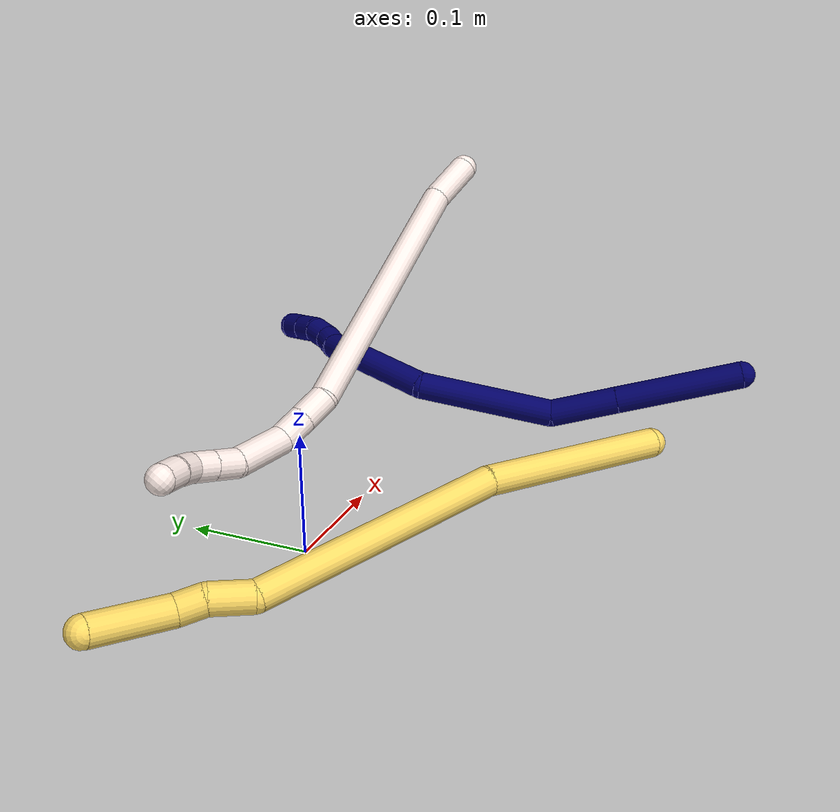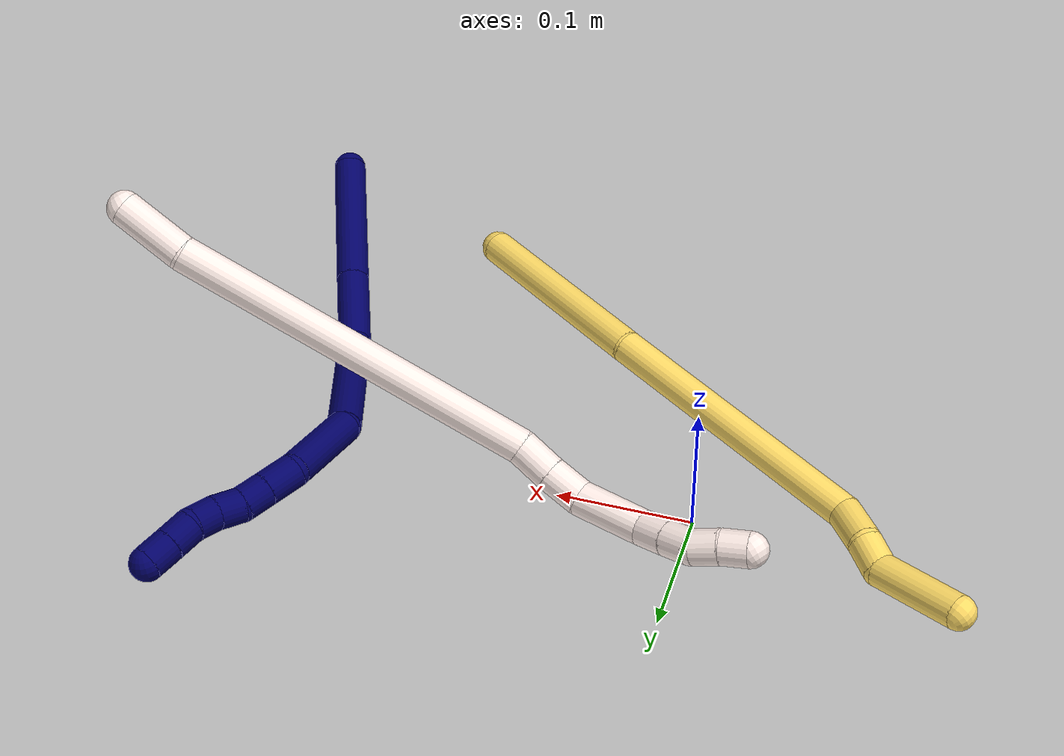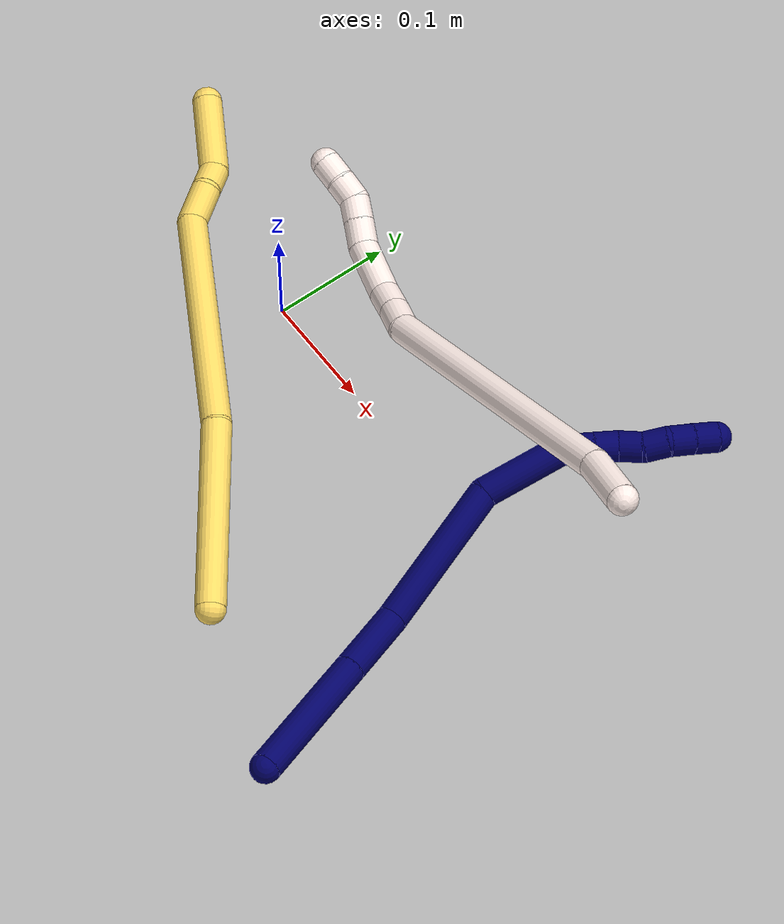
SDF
<sdf version="1.7">
 <world name="default">
  <model name="photoneo_s_sensor">
   <static>1</static>
   <pose>0 0 2 1.57079 1.57079 3.14159</pose>
   <link name="link">
    <inertial><mass>0.1</mass></inertial>
    <sensor name="sensor" type="depth">
     <update_rate>30</update_rate>
     <camera>
      <horizontal_fov>1.22</horizontal_fov>
      <image><width>1920</width><height>1200</height><format>B8G8R8</format></image>
      <clip><near>0.1</near><far>4</far></clip>
      <depth_camera><output>points</output></depth_camera>
     </camera>
     <plugin name="camera_plugin" filename="libgazebo_ros_depth_camera.so">
      <baseline>0.2</baseline>
      <alwaysOn>1</alwaysOn>
      <updateRate>0.0</updateRate>
      <cameraName>camera_ir</cameraName>
      <imageTopicName>/camera/color/image_raw</imageTopicName>
      <cameraInfoTopicName>/camera/color/camera_info</cameraInfoTopicName>
      <depthImageTopicName>/camera/depth/image_raw</depthImageTopicName>
      <depthImageCameraInfoTopicName>/camera/depth/camera_info</depthImageCameraInfoTopicName>
      <pointCloudTopicName>/camera/depth/points</pointCloudTopicName>
      <frameName>fr_optical</frameName>
      <pointCloudCutoff>0.1</pointCloudCutoff>
      <pointCloudCutoffMax>2.0</pointCloudCutoffMax>
      <distortionK1>0</distortionK1>
      <distortionK2>0</distortionK2>
      <distortionK3>0</distortionK3>
      <distortionT1>0</distortionT1>
      <distortionT2>0</distortionT2>
      <CxPrime>0</CxPrime>
      <Cx>0</Cx>
      <Cy>0</Cy>
      <focalLength>0</focalLength>
      <hackBaseline>0</hackBaseline>
     </plugin>
    </sensor>
   </link>
  </model>
  <model name="bin">
   <static>1</static>
   <link name="bottom">
    <collision name="collision-bottom">
     <pose>0 0 -0.01 0 -0 0</pose>
     <geometry><box><size>0.8 0.6 0.02</size></box></geometry>
     <surface>
      <friction><ode><mu>100</mu><mu2>100</mu2></ode></friction>
      <contact><collide_bitmask>65535</collide_bitmask></contact>
     </surface>
    </collision>
   </link>
   <link name="west_wall">
    <collision name="collision-west_wall">
     <pose>-0.41 0 0.1 0 -0 0</pose>
     <geometry><box><size>0.02 0.6 0.2</size></box></geometry>
     <surface>
      <friction><ode><mu>100</mu><mu2>100</mu2></ode></friction>
      <contact><collide_bitmask>65535</collide_bitmask></contact>
     </surface>
    </collision>
   </link>
   <link name="east_wall">
    <collision name="collision-east_wall">
     <pose>0.41 0 0.1 0 -0 0</pose>
     <geometry><box><size>0.02 0.6 0.2</size></box></geometry>
     <surface>
      <friction><ode><mu>100</mu><mu2>100</mu2></ode></friction>
      <contact><collide_bitmask>65535</collide_bitmask></contact>
     </surface>
    </collision>
   </link>
   <link name="south_wall">
    <collision name="collision-south_wall">
     <pose>0 -0.31 0.1 0 -0 0</pose>
     <geometry><box><size>0.8 0.02 0.2</size></box></geometry>
     <surface>
      <friction><ode><mu>100</mu><mu2>100</mu2></ode></friction>
      <contact><collide_bitmask>65535</collide_bitmask></contact>
     </surface>
    </collision>
   </link>
   <link name="north_wall">
    <collision name="collision-north_wall">
     <pose>0 0.31 0.1 0 -0 0</pose>
     <geometry><box><size>0.8 0.02 0.2</size></box></geometry>
     <surface>
      <friction><ode><mu>100</mu><mu2>100</mu2></ode></friction>
      <contact><collide_bitmask>65535</collide_bitmask></contact>
     </surface>
    </collision>
   </link>
  </model>
  <model name="5">
   <static>0</static>
   <link name="5">
    <collision name="collision-cylinder-e_1_1_4">
     <pose>-0.081043 0.003778 0.006917 -0.499925 -1.47384 0.45532</pose>
     <geometry><cylinder><radius>0.0125</radius><length>0.162852</length></cylinder></geometry>
     <surface>
      <friction><ode><mu>1.16</mu><mu2>1.16</mu2><slip1>0</slip1><slip2>0</slip2></ode></friction>
      <contact><ode><kp>1e+06</kp><kd>1</kd><max_vel>0</max_vel><min_depth>0.001</min_depth></ode></contact>
     </surface>
    </collision>
    <visual name="visual-cylinder-e_1_1_4">
     <pose>-0.081043 0.003778 0.006917 -0.499925 -1.47384 0.45532</pose>
     <geometry><cylinder><radius>0.0125</radius><length>0.162852</length></cylinder></geometry>
     <material><ambient>1 0.858824 0.4 1</ambient></material>
    </visual>
    <collision name="collision-cylinder-e_2_4_5">
     <pose>-0.265751 0.032181 0.015292 -1.51171 -1.33718 1.28009</pose>
     <geometry><cylinder><radius>0.0125</radius><length>0.213118</length></cylinder></geometry>
     <surface>
      <friction><ode><mu>1.16</mu><mu2>1.16</mu2><slip1>0</slip1><slip2>0</slip2></ode></friction>
      <contact><ode><kp>1e+06</kp><kd>1</kd><max_vel>0</max_vel><min_depth>0.001</min_depth></ode></contact>
     </surface>
    </collision>
    <visual name="visual-cylinder-e_2_4_5">
     <pose>-0.265751 0.032181 0.015292 -1.51171 -1.33718 1.28009</pose>
     <geometry><cylinder><radius>0.0125</radius><length>0.213118</length></cylinder></geometry>
     <material><ambient>1 0.858824 0.4 1</ambient></material>
    </visual>
    <collision name="collision-cylinder-e_3_5_6">
     <pose>-0.385034 0.055061 0.022964 0.273718 -1.17885 -0.183675</pose>
     <geometry><cylinder><radius>0.0125</radius><length>0.033801</length></cylinder></geometry>
     <surface>
      <friction><ode><mu>1.16</mu><mu2>1.16</mu2><slip1>0</slip1><slip2>0</slip2></ode></friction>
      <contact><ode><kp>1e+06</kp><kd>1</kd><max_vel>0</max_vel><min_depth>0.001</min_depth></ode></contact>
     </surface>
    </collision>
    <visual name="visual-cylinder-e_3_5_6">
     <pose>-0.385034 0.055061 0.022964 0.273718 -1.17885 -0.183675</pose>
     <geometry><cylinder><radius>0.0125</radius><length>0.033801</length></cylinder></geometry>
     <material><ambient>1 0.858824 0.4 1</ambient></material>
    </visual>
    <collision name="collision-cylinder-e_4_6_7">
     <pose>-0.411067 0.055682 0.033813 -0.471995 -1.10751 0.295205</pose>
     <geometry><cylinder><radius>0.0125</radius><length>0.023283</length></cylinder></geometry>
     <surface>
      <friction><ode><mu>1.16</mu><mu2>1.16</mu2><slip1>0</slip1><slip2>0</slip2></ode></friction>
      <contact><ode><kp>1e+06</kp><kd>1</kd><max_vel>0</max_vel><min_depth>0.001</min_depth></ode></contact>
     </surface>
    </collision>
    <visual name="visual-cylinder-e_4_6_7">
     <pose>-0.411067 0.055682 0.033813 -0.471995 -1.10751 0.295205</pose>
     <geometry><cylinder><radius>0.0125</radius><length>0.023283</length></cylinder></geometry>
     <material><ambient>1 0.858824 0.4 1</ambient></material>
    </visual>
    <collision name="collision-cylinder-e_5_7_2">
     <pose>-0.454909 0.05784 0.036712 3.02279 -1.51858 -3.01644</pose>
     <geometry><cylinder><radius>0.0125</radius><length>0.066947</length></cylinder></geometry>
     <surface>
      <friction><ode><mu>1.16</mu><mu2>1.16</mu2><slip1>0</slip1><slip2>0</slip2></ode></friction>
      <contact><ode><kp>1e+06</kp><kd>1</kd><max_vel>0</max_vel><min_depth>0.001</min_depth></ode></contact>
     </surface>
    </collision>
    <visual name="visual-cylinder-e_5_7_2">
     <pose>-0.454909 0.05784 0.036712 3.02279 -1.51858 -3.01644</pose>
     <geometry><cylinder><radius>0.0125</radius><length>0.066947</length></cylinder></geometry>
     <material><ambient>1 0.858824 0.4 1</ambient></material>
    </visual>
    <collision name="collision-sphere-2">
     <pose>-0.488337 0.057633 0.034977 0 -0 0</pose>
     <geometry><sphere><radius>0.0125</radius></sphere></geometry>
     <surface>
      <friction><ode><mu>1.16</mu><mu2>1.16</mu2><slip1>0</slip1><slip2>0</slip2></ode></friction>
      <contact><ode><kp>1e+06</kp><kd>1</kd><max_vel>0</max_vel><min_depth>0.001</min_depth></ode></contact>
     </surface>
    </collision>
    <visual name="visual-sphere-2">
     <pose>-0.488337 0.057633 0.034977 0 -0 0</pose>
     <geometry><sphere><radius>0.0125</radius></sphere></geometry>
     <material><ambient>1 0.858824 0.4 1</ambient></material>
    </visual>
    <collision name="collision-sphere-7">
     <pose>-0.421481 0.058047 0.038446 0 -0 0</pose>
     <geometry><sphere><radius>0.0125</radius></sphere></geometry>
     <surface>
      <friction><ode><mu>1.16</mu><mu2>1.16</mu2><slip1>0</slip1><slip2>0</slip2></ode></friction>
      <contact><ode><kp>1e+06</kp><kd>1</kd><max_vel>0</max_vel><min_depth>0.001</min_depth></ode></contact>
     </surface>
    </collision>
    <visual name="visual-sphere-7">
     <pose>-0.421481 0.058047 0.038446 0 -0 0</pose>
     <geometry><sphere><radius>0.0125</radius></sphere></geometry>
     <material><ambient>1 0.858824 0.4 1</ambient></material>
    </visual>
    <collision name="collision-sphere-6">
     <pose>-0.400653 0.053316 0.029179 0 -0 0</pose>
     <geometry><sphere><radius>0.0125</radius></sphere></geometry>
     <surface>
      <friction><ode><mu>1.16</mu><mu2>1.16</mu2><slip1>0</slip1><slip2>0</slip2></ode></friction>
      <contact><ode><kp>1e+06</kp><kd>1</kd><max_vel>0</max_vel><min_depth>0.001</min_depth></ode></contact>
     </surface>
    </collision>
    <visual name="visual-sphere-6">
     <pose>-0.400653 0.053316 0.029179 0 -0 0</pose>
     <geometry><sphere><radius>0.0125</radius></sphere></geometry>
     <material><ambient>1 0.858824 0.4 1</ambient></material>
    </visual>
    <collision name="collision-sphere-5">
     <pose>-0.369416 0.056806 0.016748 0 -0 0</pose>
     <geometry><sphere><radius>0.0125</radius></sphere></geometry>
     <surface>
      <friction><ode><mu>1.16</mu><mu2>1.16</mu2><slip1>0</slip1><slip2>0</slip2></ode></friction>
      <contact><ode><kp>1e+06</kp><kd>1</kd><max_vel>0</max_vel><min_depth>0.001</min_depth></ode></contact>
     </surface>
    </collision>
    <visual name="visual-sphere-5">
     <pose>-0.369416 0.056806 0.016748 0 -0 0</pose>
     <geometry><sphere><radius>0.0125</radius></sphere></geometry>
     <material><ambient>1 0.858824 0.4 1</ambient></material>
    </visual>
    <collision name="collision-sphere-1">
     <geometry><sphere><radius>0.0125</radius></sphere></geometry>
     <surface>
      <friction><ode><mu>1.16</mu><mu2>1.16</mu2><slip1>0</slip1><slip2>0</slip2></ode></friction>
      <contact><ode><kp>1e+06</kp><kd>1</kd><max_vel>0</max_vel><min_depth>0.001</min_depth></ode></contact>
     </surface>
    </collision>
    <visual name="visual-sphere-1">
     <geometry><sphere><radius>0.0125</radius></sphere></geometry>
     <material><ambient>1 0.858824 0.4 1</ambient></material>
    </visual>
    <collision name="collision-sphere-4">
     <pose>-0.162087 0.007557 0.013835 0 -0 0</pose>
     <geometry><sphere><radius>0.0125</radius></sphere></geometry>
     <surface>
      <friction><ode><mu>1.16</mu><mu2>1.16</mu2><slip1>0</slip1><slip2>0</slip2></ode></friction>
      <contact><ode><kp>1e+06</kp><kd>1</kd><max_vel>0</max_vel><min_depth>0.001</min_depth></ode></contact>
     </surface>
    </collision>
    <visual name="visual-sphere-4">
     <pose>-0.162087 0.007557 0.013835 0 -0 0</pose>
     <geometry><sphere><radius>0.0125</radius></sphere></geometry>
     <material><ambient>1 0.858824 0.4 1</ambient></material>
    </visual>
    <inertial>
     <pose>-0.245749 0.029007 0.016813 0 -0 0</pose>
     <mass>0.5</mass>
     <inertia>
      <ixx>0.000245</ixx>
      <ixy>0</ixy>
      <ixz>0</ixz>
      <iyy>0.001372</iyy>
      <iyz>0</iyz>
      <izz>0.000989</izz>
     </inertia>
    </inertial>
   </link>
   <pose>0.21156 -0.218182 0.040144 -1.92047 0.113772 -0.576979</pose>
  </model>
  <model name="7">
   <static>0</static>
   <link name="7">
    <collision name="collision-cylinder-e_1_1_4">
     <pose>0.007546 0.054068 0.021075 -1.19913 0.129315 -0.088452</pose>
     <geometry><cylinder><radius>0.0125</radius><length>0.117039</length></cylinder></geometry>
     <surface>
      <friction><ode><mu>1.16</mu><mu2>1.16</mu2><slip1>0</slip1><slip2>0</slip2></ode></friction>
      <contact><ode><kp>1e+06</kp><kd>1</kd><max_vel>0</max_vel><min_depth>0.001</min_depth></ode></contact>
     </surface>
    </collision>
    <visual name="visual-cylinder-e_1_1_4">
     <pose>0.007546 0.054068 0.021075 -1.19913 0.129315 -0.088452</pose>
     <geometry><cylinder><radius>0.0125</radius><length>0.117039</length></cylinder></geometry>
     <material><ambient>0.003922 0 0.403922 1</ambient></material>
    </visual>
    <collision name="collision-cylinder-e_2_4_5">
     <pose>0.019229 0.136891 0.053412 -1.1975 0.133147 -0.090919</pose>
     <geometry><cylinder><radius>0.0125</radius><length>0.062312</length></cylinder></geometry>
     <surface>
      <friction><ode><mu>1.16</mu><mu2>1.16</mu2><slip1>0</slip1><slip2>0</slip2></ode></friction>
      <contact><ode><kp>1e+06</kp><kd>1</kd><max_vel>0</max_vel><min_depth>0.001</min_depth></ode></contact>
     </surface>
    </collision>
    <visual name="visual-cylinder-e_2_4_5">
     <pose>0.019229 0.136891 0.053412 -1.1975 0.133147 -0.090919</pose>
     <geometry><cylinder><radius>0.0125</radius><length>0.062312</length></cylinder></geometry>
     <material><ambient>0.003922 0 0.403922 1</ambient></material>
    </visual>
    <collision name="collision-cylinder-e_3_5_6">
     <pose>0.033707 0.227183 0.061003 -1.63037 0.166204 -0.17636</pose>
     <geometry><cylinder><radius>0.0125</radius><length>0.12502</length></cylinder></geometry>
     <surface>
      <friction><ode><mu>1.16</mu><mu2>1.16</mu2><slip1>0</slip1><slip2>0</slip2></ode></friction>
      <contact><ode><kp>1e+06</kp><kd>1</kd><max_vel>0</max_vel><min_depth>0.001</min_depth></ode></contact>
     </surface>
    </collision>
    <visual name="visual-cylinder-e_3_5_6">
     <pose>0.033707 0.227183 0.061003 -1.63037 0.166204 -0.17636</pose>
     <geometry><cylinder><radius>0.0125</radius><length>0.12502</length></cylinder></geometry>
     <material><ambient>0.003922 0 0.403922 1</ambient></material>
    </visual>
    <collision name="collision-cylinder-e_4_6_7">
     <pose>0.034429 0.321489 0.051562 -1.74514 -0.281443 0.334427</pose>
     <geometry><cylinder><radius>0.0125</radius><length>0.069267</length></cylinder></geometry>
     <surface>
      <friction><ode><mu>1.16</mu><mu2>1.16</mu2><slip1>0</slip1><slip2>0</slip2></ode></friction>
      <contact><ode><kp>1e+06</kp><kd>1</kd><max_vel>0</max_vel><min_depth>0.001</min_depth></ode></contact>
     </surface>
    </collision>
    <visual name="visual-cylinder-e_4_6_7">
     <pose>0.034429 0.321489 0.051562 -1.74514 -0.281443 0.334427</pose>
     <geometry><cylinder><radius>0.0125</radius><length>0.069267</length></cylinder></geometry>
     <material><ambient>0.003922 0 0.403922 1</ambient></material>
    </visual>
    <collision name="collision-cylinder-e_5_7_8">
     <pose>0.016533 0.364461 0.045749 -1.57489 -0.681404 0.683988</pose>
     <geometry><cylinder><radius>0.0125</radius><length>0.02628</length></cylinder></geometry>
     <surface>
      <friction><ode><mu>1.16</mu><mu2>1.16</mu2><slip1>0</slip1><slip2>0</slip2></ode></friction>
      <contact><ode><kp>1e+06</kp><kd>1</kd><max_vel>0</max_vel><min_depth>0.001</min_depth></ode></contact>
     </surface>
    </collision>
    <visual name="visual-cylinder-e_5_7_8">
     <pose>0.016533 0.364461 0.045749 -1.57489 -0.681404 0.683988</pose>
     <geometry><cylinder><radius>0.0125</radius><length>0.02628</length></cylinder></geometry>
     <material><ambient>0.003922 0 0.403922 1</ambient></material>
    </visual>
    <collision name="collision-cylinder-e_6_8_9">
     <pose>0.001861 0.382365 0.045696 -1.57223 -0.693218 0.694136</pose>
     <geometry><cylinder><radius>0.0125</radius><length>0.020016</length></cylinder></geometry>
     <surface>
      <friction><ode><mu>1.16</mu><mu2>1.16</mu2><slip1>0</slip1><slip2>0</slip2></ode></friction>
      <contact><ode><kp>1e+06</kp><kd>1</kd><max_vel>0</max_vel><min_depth>0.001</min_depth></ode></contact>
     </surface>
    </collision>
    <visual name="visual-cylinder-e_6_8_9">
     <pose>0.001861 0.382365 0.045696 -1.57223 -0.693218 0.694136</pose>
     <geometry><cylinder><radius>0.0125</radius><length>0.020016</length></cylinder></geometry>
     <material><ambient>0.003922 0 0.403922 1</ambient></material>
    </visual>
    <collision name="collision-cylinder-e_7_9_10">
     <pose>-0.012107 0.396311 0.043762 -1.86928 -0.858656 1.10976</pose>
     <geometry><cylinder><radius>0.0125</radius><length>0.020008</length></cylinder></geometry>
     <surface>
      <friction><ode><mu>1.16</mu><mu2>1.16</mu2><slip1>0</slip1><slip2>0</slip2></ode></friction>
      <contact><ode><kp>1e+06</kp><kd>1</kd><max_vel>0</max_vel><min_depth>0.001</min_depth></ode></contact>
     </surface>
    </collision>
    <visual name="visual-cylinder-e_7_9_10">
     <pose>-0.012107 0.396311 0.043762 -1.86928 -0.858656 1.10976</pose>
     <geometry><cylinder><radius>0.0125</radius><length>0.020008</length></cylinder></geometry>
     <material><ambient>0.003922 0 0.403922 1</ambient></material>
    </visual>
    <collision name="collision-cylinder-e_8_10_11">
     <pose>-0.025067 0.410772 0.039961 -1.79564 -0.56893 0.703159</pose>
     <geometry><cylinder><radius>0.0125</radius><length>0.020001</length></cylinder></geometry>
     <surface>
      <friction><ode><mu>1.16</mu><mu2>1.16</mu2><slip1>0</slip1><slip2>0</slip2></ode></friction>
      <contact><ode><kp>1e+06</kp><kd>1</kd><max_vel>0</max_vel><min_depth>0.001</min_depth></ode></contact>
     </surface>
    </collision>
    <visual name="visual-cylinder-e_8_10_11">
     <pose>-0.025067 0.410772 0.039961 -1.79564 -0.56893 0.703159</pose>
     <geometry><cylinder><radius>0.0125</radius><length>0.020001</length></cylinder></geometry>
     <material><ambient>0.003922 0 0.403922 1</ambient></material>
    </visual>
    <collision name="collision-cylinder-e_9_11_12">
     <pose>-0.036257 0.427076 0.039271 -1.42495 -0.617097 0.537345</pose>
     <geometry><cylinder><radius>0.0125</radius><length>0.020053</length></cylinder></geometry>
     <surface>
      <friction><ode><mu>1.16</mu><mu2>1.16</mu2><slip1>0</slip1><slip2>0</slip2></ode></friction>
      <contact><ode><kp>1e+06</kp><kd>1</kd><max_vel>0</max_vel><min_depth>0.001</min_depth></ode></contact>
     </surface>
    </collision>
    <visual name="visual-cylinder-e_9_11_12">
     <pose>-0.036257 0.427076 0.039271 -1.42495 -0.617097 0.537345</pose>
     <geometry><cylinder><radius>0.0125</radius><length>0.020053</length></cylinder></geometry>
     <material><ambient>0.003922 0 0.403922 1</ambient></material>
    </visual>
    <collision name="collision-cylinder-e_10_12_2">
     <pose>-0.047999 0.443126 0.041643 -1.42328 -0.635949 0.553144</pose>
     <geometry><cylinder><radius>0.0125</radius><length>0.020004</length></cylinder></geometry>
     <surface>
      <friction><ode><mu>1.16</mu><mu2>1.16</mu2><slip1>0</slip1><slip2>0</slip2></ode></friction>
      <contact><ode><kp>1e+06</kp><kd>1</kd><max_vel>0</max_vel><min_depth>0.001</min_depth></ode></contact>
     </surface>
    </collision>
    <visual name="visual-cylinder-e_10_12_2">
     <pose>-0.047999 0.443126 0.041643 -1.42328 -0.635949 0.553144</pose>
     <geometry><cylinder><radius>0.0125</radius><length>0.020004</length></cylinder></geometry>
     <material><ambient>0.003922 0 0.403922 1</ambient></material>
    </visual>
    <collision name="collision-sphere-2">
     <pose>-0.05394 0.451085 0.042825 0 -0 0</pose>
     <geometry><sphere><radius>0.0125</radius></sphere></geometry>
     <surface>
      <friction><ode><mu>1.16</mu><mu2>1.16</mu2><slip1>0</slip1><slip2>0</slip2></ode></friction>
      <contact><ode><kp>1e+06</kp><kd>1</kd><max_vel>0</max_vel><min_depth>0.001</min_depth></ode></contact>
     </surface>
    </collision>
    <visual name="visual-sphere-2">
     <pose>-0.05394 0.451085 0.042825 0 -0 0</pose>
     <geometry><sphere><radius>0.0125</radius></sphere></geometry>
     <material><ambient>0.003922 0 0.403922 1</ambient></material>
    </visual>
    <collision name="collision-sphere-12">
     <pose>-0.042059 0.435166 0.04046 0 -0 0</pose>
     <geometry><sphere><radius>0.0125</radius></sphere></geometry>
     <surface>
      <friction><ode><mu>1.16</mu><mu2>1.16</mu2><slip1>0</slip1><slip2>0</slip2></ode></friction>
      <contact><ode><kp>1e+06</kp><kd>1</kd><max_vel>0</max_vel><min_depth>0.001</min_depth></ode></contact>
     </surface>
    </collision>
    <visual name="visual-sphere-12">
     <pose>-0.042059 0.435166 0.04046 0 -0 0</pose>
     <geometry><sphere><radius>0.0125</radius></sphere></geometry>
     <material><ambient>0.003922 0 0.403922 1</ambient></material>
    </visual>
    <collision name="collision-sphere-11">
     <pose>-0.030455 0.418985 0.038083 0 -0 0</pose>
     <geometry><sphere><radius>0.0125</radius></sphere></geometry>
     <surface>
      <friction><ode><mu>1.16</mu><mu2>1.16</mu2><slip1>0</slip1><slip2>0</slip2></ode></friction>
      <contact><ode><kp>1e+06</kp><kd>1</kd><max_vel>0</max_vel><min_depth>0.001</min_depth></ode></contact>
     </surface>
    </collision>
    <visual name="visual-sphere-11">
     <pose>-0.030455 0.418985 0.038083 0 -0 0</pose>
     <geometry><sphere><radius>0.0125</radius></sphere></geometry>
     <material><ambient>0.003922 0 0.403922 1</ambient></material>
    </visual>
    <collision name="collision-sphere-10">
     <pose>-0.019679 0.402559 0.04184 0 -0 0</pose>
     <geometry><sphere><radius>0.0125</radius></sphere></geometry>
     <surface>
      <friction><ode><mu>1.16</mu><mu2>1.16</mu2><slip1>0</slip1><slip2>0</slip2></ode></friction>
      <contact><ode><kp>1e+06</kp><kd>1</kd><max_vel>0</max_vel><min_depth>0.001</min_depth></ode></contact>
     </surface>
    </collision>
    <visual name="visual-sphere-10">
     <pose>-0.019679 0.402559 0.04184 0 -0 0</pose>
     <geometry><sphere><radius>0.0125</radius></sphere></geometry>
     <material><ambient>0.003922 0 0.403922 1</ambient></material>
    </visual>
    <collision name="collision-sphere-9">
     <pose>-0.004534 0.390063 0.045685 0 -0 0</pose>
     <geometry><sphere><radius>0.0125</radius></sphere></geometry>
     <surface>
      <friction><ode><mu>1.16</mu><mu2>1.16</mu2><slip1>0</slip1><slip2>0</slip2></ode></friction>
      <contact><ode><kp>1e+06</kp><kd>1</kd><max_vel>0</max_vel><min_depth>0.001</min_depth></ode></contact>
     </surface>
    </collision>
    <visual name="visual-sphere-9">
     <pose>-0.004534 0.390063 0.045685 0 -0 0</pose>
     <geometry><sphere><radius>0.0125</radius></sphere></geometry>
     <material><ambient>0.003922 0 0.403922 1</ambient></material>
    </visual>
    <collision name="collision-sphere-4">
     <pose>0.015093 0.108137 0.04215 0 -0 0</pose>
     <geometry><sphere><radius>0.0125</radius></sphere></geometry>
     <surface>
      <friction><ode><mu>1.16</mu><mu2>1.16</mu2><slip1>0</slip1><slip2>0</slip2></ode></friction>
      <contact><ode><kp>1e+06</kp><kd>1</kd><max_vel>0</max_vel><min_depth>0.001</min_depth></ode></contact>
     </surface>
    </collision>
    <visual name="visual-sphere-4">
     <pose>0.015093 0.108137 0.04215 0 -0 0</pose>
     <geometry><sphere><radius>0.0125</radius></sphere></geometry>
     <material><ambient>0.003922 0 0.403922 1</ambient></material>
    </visual>
    <collision name="collision-sphere-1">
     <geometry><sphere><radius>0.0125</radius></sphere></geometry>
     <surface>
      <friction><ode><mu>1.16</mu><mu2>1.16</mu2><slip1>0</slip1><slip2>0</slip2></ode></friction>
      <contact><ode><kp>1e+06</kp><kd>1</kd><max_vel>0</max_vel><min_depth>0.001</min_depth></ode></contact>
     </surface>
    </collision>
    <visual name="visual-sphere-1">
     <geometry><sphere><radius>0.0125</radius></sphere></geometry>
     <material><ambient>0.003922 0 0.403922 1</ambient></material>
    </visual>
    <collision name="collision-sphere-8">
     <pose>0.008256 0.374667 0.045707 0 -0 0</pose>
     <geometry><sphere><radius>0.0125</radius></sphere></geometry>
     <surface>
      <friction><ode><mu>1.16</mu><mu2>1.16</mu2><slip1>0</slip1><slip2>0</slip2></ode></friction>
      <contact><ode><kp>1e+06</kp><kd>1</kd><max_vel>0</max_vel><min_depth>0.001</min_depth></ode></contact>
     </surface>
    </collision>
    <visual name="visual-sphere-8">
     <pose>0.008256 0.374667 0.045707 0 -0 0</pose>
     <geometry><sphere><radius>0.0125</radius></sphere></geometry>
     <material><ambient>0.003922 0 0.403922 1</ambient></material>
    </visual>
    <collision name="collision-sphere-5">
     <pose>0.023365 0.165644 0.064673 0 -0 0</pose>
     <geometry><sphere><radius>0.0125</radius></sphere></geometry>
     <surface>
      <friction><ode><mu>1.16</mu><mu2>1.16</mu2><slip1>0</slip1><slip2>0</slip2></ode></friction>
      <contact><ode><kp>1e+06</kp><kd>1</kd><max_vel>0</max_vel><min_depth>0.001</min_depth></ode></contact>
     </surface>
    </collision>
    <visual name="visual-sphere-5">
     <pose>0.023365 0.165644 0.064673 0 -0 0</pose>
     <geometry><sphere><radius>0.0125</radius></sphere></geometry>
     <material><ambient>0.003922 0 0.403922 1</ambient></material>
    </visual>
    <collision name="collision-sphere-6">
     <pose>0.044048 0.288722 0.057333 0 -0 0</pose>
     <geometry><sphere><radius>0.0125</radius></sphere></geometry>
     <surface>
      <friction><ode><mu>1.16</mu><mu2>1.16</mu2><slip1>0</slip1><slip2>0</slip2></ode></friction>
      <contact><ode><kp>1e+06</kp><kd>1</kd><max_vel>0</max_vel><min_depth>0.001</min_depth></ode></contact>
     </surface>
    </collision>
    <visual name="visual-sphere-6">
     <pose>0.044048 0.288722 0.057333 0 -0 0</pose>
     <geometry><sphere><radius>0.0125</radius></sphere></geometry>
     <material><ambient>0.003922 0 0.403922 1</ambient></material>
    </visual>
    <collision name="collision-sphere-7">
     <pose>0.02481 0.354256 0.04579 0 -0 0</pose>
     <geometry><sphere><radius>0.0125</radius></sphere></geometry>
     <surface>
      <friction><ode><mu>1.16</mu><mu2>1.16</mu2><slip1>0</slip1><slip2>0</slip2></ode></friction>
      <contact><ode><kp>1e+06</kp><kd>1</kd><max_vel>0</max_vel><min_depth>0.001</min_depth></ode></contact>
     </surface>
    </collision>
    <visual name="visual-sphere-7">
     <pose>0.02481 0.354256 0.04579 0 -0 0</pose>
     <geometry><sphere><radius>0.0125</radius></sphere></geometry>
     <material><ambient>0.003922 0 0.403922 1</ambient></material>
    </visual>
    <inertial>
     <pose>0.013442 0.232669 0.044811 0 -0 0</pose>
     <mass>0.5</mass>
     <inertia>
      <ixx>0.000322</ixx>
      <ixy>0</ixy>
      <ixz>0</ixz>
      <iyy>6.3e-05</iyy>
      <iyz>0</iyz>
      <izz>-0.000381</izz>
     </inertia>
    </inertial>
   </link>
   <pose>0.352992 -0.266218 0.055545 3.03607 -0.217157 -2.96895</pose>
  </model>
  <model name="11">
   <static>0</static>
   <link name="11">
    <collision name="collision-cylinder-e_1_1_4">
     <pose>-0.007486 0.004606 -0.023316 -2.94656 -0.305129 2.00831</pose>
     <geometry><cylinder><radius>0.0125</radius><length>0.049835</length></cylinder></geometry>
     <surface>
      <friction><ode><mu>1.16</mu><mu2>1.16</mu2><slip1>0</slip1><slip2>0</slip2></ode></friction>
      <contact><ode><kp>1e+06</kp><kd>1</kd><max_vel>0</max_vel><min_depth>0.001</min_depth></ode></contact>
     </surface>
    </collision>
    <visual name="visual-cylinder-e_1_1_4">
     <pose>-0.007486 0.004606 -0.023316 -2.94656 -0.305129 2.00831</pose>
     <geometry><cylinder><radius>0.0125</radius><length>0.049835</length></cylinder></geometry>
     <material><ambient>1 0.933333 0.909804 1</ambient></material>
    </visual>
    <collision name="collision-cylinder-e_2_4_5">
     <pose>-0.078666 0.02402 -0.161267 -3.01313 -0.503649 2.65166</pose>
     <geometry><cylinder><radius>0.0125</radius><length>0.263952</length></cylinder></geometry>
     <surface>
      <friction><ode><mu>1.16</mu><mu2>1.16</mu2><slip1>0</slip1><slip2>0</slip2></ode></friction>
      <contact><ode><kp>1e+06</kp><kd>1</kd><max_vel>0</max_vel><min_depth>0.001</min_depth></ode></contact>
     </surface>
    </collision>
    <visual name="visual-cylinder-e_2_4_5">
     <pose>-0.078666 0.02402 -0.161267 -3.01313 -0.503649 2.65166</pose>
     <geometry><cylinder><radius>0.0125</radius><length>0.263952</length></cylinder></geometry>
     <material><ambient>1 0.933333 0.909804 1</ambient></material>
    </visual>
    <collision name="collision-cylinder-e_3_5_6">
     <pose>-0.145084 0.041628 -0.288941 -2.92998 -0.201418 1.5211</pose>
     <geometry><cylinder><radius>0.0125</radius><length>0.027221</length></cylinder></geometry>
     <surface>
      <friction><ode><mu>1.16</mu><mu2>1.16</mu2><slip1>0</slip1><slip2>0</slip2></ode></friction>
      <contact><ode><kp>1e+06</kp><kd>1</kd><max_vel>0</max_vel><min_depth>0.001</min_depth></ode></contact>
     </surface>
    </collision>
    <visual name="visual-cylinder-e_3_5_6">
     <pose>-0.145084 0.041628 -0.288941 -2.92998 -0.201418 1.5211</pose>
     <geometry><cylinder><radius>0.0125</radius><length>0.027221</length></cylinder></geometry>
     <material><ambient>1 0.933333 0.909804 1</ambient></material>
    </visual>
    <collision name="collision-cylinder-e_4_6_7">
     <pose>-0.151117 0.047729 -0.314424 -2.88241 -0.251661 1.54103</pose>
     <geometry><cylinder><radius>0.0125</radius><length>0.026587</length></cylinder></geometry>
     <surface>
      <friction><ode><mu>1.16</mu><mu2>1.16</mu2><slip1>0</slip1><slip2>0</slip2></ode></friction>
      <contact><ode><kp>1e+06</kp><kd>1</kd><max_vel>0</max_vel><min_depth>0.001</min_depth></ode></contact>
     </surface>
    </collision>
    <visual name="visual-cylinder-e_4_6_7">
     <pose>-0.151117 0.047729 -0.314424 -2.88241 -0.251661 1.54103</pose>
     <geometry><cylinder><radius>0.0125</radius><length>0.026587</length></cylinder></geometry>
     <material><ambient>1 0.933333 0.909804 1</ambient></material>
    </visual>
    <collision name="collision-cylinder-e_5_7_8">
     <pose>-0.161761 0.064309 -0.346302 -2.54211 -0.302029 0.915079</pose>
     <geometry><cylinder><radius>0.0125</radius><length>0.049308</length></cylinder></geometry>
     <surface>
      <friction><ode><mu>1.16</mu><mu2>1.16</mu2><slip1>0</slip1><slip2>0</slip2></ode></friction>
      <contact><ode><kp>1e+06</kp><kd>1</kd><max_vel>0</max_vel><min_depth>0.001</min_depth></ode></contact>
     </surface>
    </collision>
    <visual name="visual-cylinder-e_5_7_8">
     <pose>-0.161761 0.064309 -0.346302 -2.54211 -0.302029 0.915079</pose>
     <geometry><cylinder><radius>0.0125</radius><length>0.049308</length></cylinder></geometry>
     <material><ambient>1 0.933333 0.909804 1</ambient></material>
    </visual>
    <collision name="collision-cylinder-e_6_8_9">
     <pose>-0.170484 0.086346 -0.373015 -2.26434 -0.121455 0.25779</pose>
     <geometry><cylinder><radius>0.0125</radius><length>0.022944</length></cylinder></geometry>
     <surface>
      <friction><ode><mu>1.16</mu><mu2>1.16</mu2><slip1>0</slip1><slip2>0</slip2></ode></friction>
      <contact><ode><kp>1e+06</kp><kd>1</kd><max_vel>0</max_vel><min_depth>0.001</min_depth></ode></contact>
     </surface>
    </collision>
    <visual name="visual-cylinder-e_6_8_9">
     <pose>-0.170484 0.086346 -0.373015 -2.26434 -0.121455 0.25779</pose>
     <geometry><cylinder><radius>0.0125</radius><length>0.022944</length></cylinder></geometry>
     <material><ambient>1 0.933333 0.909804 1</ambient></material>
    </visual>
    <collision name="collision-cylinder-e_7_9_10">
     <pose>-0.173293 0.102811 -0.386565 -2.25364 -0.141821 0.296473</pose>
     <geometry><cylinder><radius>0.0125</radius><length>0.020075</length></cylinder></geometry>
     <surface>
      <friction><ode><mu>1.16</mu><mu2>1.16</mu2><slip1>0</slip1><slip2>0</slip2></ode></friction>
      <contact><ode><kp>1e+06</kp><kd>1</kd><max_vel>0</max_vel><min_depth>0.001</min_depth></ode></contact>
     </surface>
    </collision>
    <visual name="visual-cylinder-e_7_9_10">
     <pose>-0.173293 0.102811 -0.386565 -2.25364 -0.141821 0.296473</pose>
     <geometry><cylinder><radius>0.0125</radius><length>0.020075</length></cylinder></geometry>
     <material><ambient>1 0.933333 0.909804 1</ambient></material>
    </visual>
    <collision name="collision-cylinder-e_8_10_11">
     <pose>-0.180289 0.117434 -0.397445 -2.15884 -0.59107 1.03447</pose>
     <geometry><cylinder><radius>0.0125</radius><length>0.020017</length></cylinder></geometry>
     <surface>
      <friction><ode><mu>1.16</mu><mu2>1.16</mu2><slip1>0</slip1><slip2>0</slip2></ode></friction>
      <contact><ode><kp>1e+06</kp><kd>1</kd><max_vel>0</max_vel><min_depth>0.001</min_depth></ode></contact>
     </surface>
    </collision>
    <visual name="visual-cylinder-e_8_10_11">
     <pose>-0.180289 0.117434 -0.397445 -2.15884 -0.59107 1.03447</pose>
     <geometry><cylinder><radius>0.0125</radius><length>0.020017</length></cylinder></geometry>
     <material><ambient>1 0.933333 0.909804 1</ambient></material>
    </visual>
    <collision name="collision-cylinder-e_9_11_2">
     <pose>-0.191318 0.130471 -0.407835 -2.32749 -0.574634 1.20171</pose>
     <geometry><cylinder><radius>0.0125</radius><length>0.020062</length></cylinder></geometry>
     <surface>
      <friction><ode><mu>1.16</mu><mu2>1.16</mu2><slip1>0</slip1><slip2>0</slip2></ode></friction>
      <contact><ode><kp>1e+06</kp><kd>1</kd><max_vel>0</max_vel><min_depth>0.001</min_depth></ode></contact>
     </surface>
    </collision>
    <visual name="visual-cylinder-e_9_11_2">
     <pose>-0.191318 0.130471 -0.407835 -2.32749 -0.574634 1.20171</pose>
     <geometry><cylinder><radius>0.0125</radius><length>0.020062</length></cylinder></geometry>
     <material><ambient>1 0.933333 0.909804 1</ambient></material>
    </visual>
    <collision name="collision-sphere-2">
     <pose>-0.19677 0.136593 -0.413616 0 -0 0</pose>
     <geometry><sphere><radius>0.0125</radius></sphere></geometry>
     <surface>
      <friction><ode><mu>1.16</mu><mu2>1.16</mu2><slip1>0</slip1><slip2>0</slip2></ode></friction>
      <contact><ode><kp>1e+06</kp><kd>1</kd><max_vel>0</max_vel><min_depth>0.001</min_depth></ode></contact>
     </surface>
    </collision>
    <visual name="visual-sphere-2">
     <pose>-0.19677 0.136593 -0.413616 0 -0 0</pose>
     <geometry><sphere><radius>0.0125</radius></sphere></geometry>
     <material><ambient>1 0.933333 0.909804 1</ambient></material>
    </visual>
    <collision name="collision-sphere-11">
     <pose>-0.185866 0.124349 -0.402055 0 -0 0</pose>
     <geometry><sphere><radius>0.0125</radius></sphere></geometry>
     <surface>
      <friction><ode><mu>1.16</mu><mu2>1.16</mu2><slip1>0</slip1><slip2>0</slip2></ode></friction>
      <contact><ode><kp>1e+06</kp><kd>1</kd><max_vel>0</max_vel><min_depth>0.001</min_depth></ode></contact>
     </surface>
    </collision>
    <visual name="visual-sphere-11">
     <pose>-0.185866 0.124349 -0.402055 0 -0 0</pose>
     <geometry><sphere><radius>0.0125</radius></sphere></geometry>
     <material><ambient>1 0.933333 0.909804 1</ambient></material>
    </visual>
    <collision name="collision-sphere-10">
     <pose>-0.174711 0.11052 -0.392835 0 -0 0</pose>
     <geometry><sphere><radius>0.0125</radius></sphere></geometry>
     <surface>
      <friction><ode><mu>1.16</mu><mu2>1.16</mu2><slip1>0</slip1><slip2>0</slip2></ode></friction>
      <contact><ode><kp>1e+06</kp><kd>1</kd><max_vel>0</max_vel><min_depth>0.001</min_depth></ode></contact>
     </surface>
    </collision>
    <visual name="visual-sphere-10">
     <pose>-0.174711 0.11052 -0.392835 0 -0 0</pose>
     <geometry><sphere><radius>0.0125</radius></sphere></geometry>
     <material><ambient>1 0.933333 0.909804 1</ambient></material>
    </visual>
    <collision name="collision-sphere-9">
     <pose>-0.171874 0.095102 -0.380295 0 -0 0</pose>
     <geometry><sphere><radius>0.0125</radius></sphere></geometry>
     <surface>
      <friction><ode><mu>1.16</mu><mu2>1.16</mu2><slip1>0</slip1><slip2>0</slip2></ode></friction>
      <contact><ode><kp>1e+06</kp><kd>1</kd><max_vel>0</max_vel><min_depth>0.001</min_depth></ode></contact>
     </surface>
    </collision>
    <visual name="visual-sphere-9">
     <pose>-0.171874 0.095102 -0.380295 0 -0 0</pose>
     <geometry><sphere><radius>0.0125</radius></sphere></geometry>
     <material><ambient>1 0.933333 0.909804 1</ambient></material>
    </visual>
    <collision name="collision-sphere-4">
     <pose>-0.014971 0.009212 -0.046632 0 -0 0</pose>
     <geometry><sphere><radius>0.0125</radius></sphere></geometry>
     <surface>
      <friction><ode><mu>1.16</mu><mu2>1.16</mu2><slip1>0</slip1><slip2>0</slip2></ode></friction>
      <contact><ode><kp>1e+06</kp><kd>1</kd><max_vel>0</max_vel><min_depth>0.001</min_depth></ode></contact>
     </surface>
    </collision>
    <visual name="visual-sphere-4">
     <pose>-0.014971 0.009212 -0.046632 0 -0 0</pose>
     <geometry><sphere><radius>0.0125</radius></sphere></geometry>
     <material><ambient>1 0.933333 0.909804 1</ambient></material>
    </visual>
    <collision name="collision-sphere-1">
     <geometry><sphere><radius>0.0125</radius></sphere></geometry>
     <surface>
      <friction><ode><mu>1.16</mu><mu2>1.16</mu2><slip1>0</slip1><slip2>0</slip2></ode></friction>
      <contact><ode><kp>1e+06</kp><kd>1</kd><max_vel>0</max_vel><min_depth>0.001</min_depth></ode></contact>
     </surface>
    </collision>
    <visual name="visual-sphere-1">
     <geometry><sphere><radius>0.0125</radius></sphere></geometry>
     <material><ambient>1 0.933333 0.909804 1</ambient></material>
    </visual>
    <collision name="collision-sphere-8">
     <pose>-0.169094 0.077589 -0.365736 0 -0 0</pose>
     <geometry><sphere><radius>0.0125</radius></sphere></geometry>
     <surface>
      <friction><ode><mu>1.16</mu><mu2>1.16</mu2><slip1>0</slip1><slip2>0</slip2></ode></friction>
      <contact><ode><kp>1e+06</kp><kd>1</kd><max_vel>0</max_vel><min_depth>0.001</min_depth></ode></contact>
     </surface>
    </collision>
    <visual name="visual-sphere-8">
     <pose>-0.169094 0.077589 -0.365736 0 -0 0</pose>
     <geometry><sphere><radius>0.0125</radius></sphere></geometry>
     <material><ambient>1 0.933333 0.909804 1</ambient></material>
    </visual>
    <collision name="collision-sphere-5">
     <pose>-0.142361 0.038827 -0.275903 0 -0 0</pose>
     <geometry><sphere><radius>0.0125</radius></sphere></geometry>
     <surface>
      <friction><ode><mu>1.16</mu><mu2>1.16</mu2><slip1>0</slip1><slip2>0</slip2></ode></friction>
      <contact><ode><kp>1e+06</kp><kd>1</kd><max_vel>0</max_vel><min_depth>0.001</min_depth></ode></contact>
     </surface>
    </collision>
    <visual name="visual-sphere-5">
     <pose>-0.142361 0.038827 -0.275903 0 -0 0</pose>
     <geometry><sphere><radius>0.0125</radius></sphere></geometry>
     <material><ambient>1 0.933333 0.909804 1</ambient></material>
    </visual>
    <collision name="collision-sphere-6">
     <pose>-0.147807 0.044429 -0.301979 0 -0 0</pose>
     <geometry><sphere><radius>0.0125</radius></sphere></geometry>
     <surface>
      <friction><ode><mu>1.16</mu><mu2>1.16</mu2><slip1>0</slip1><slip2>0</slip2></ode></friction>
      <contact><ode><kp>1e+06</kp><kd>1</kd><max_vel>0</max_vel><min_depth>0.001</min_depth></ode></contact>
     </surface>
    </collision>
    <visual name="visual-sphere-6">
     <pose>-0.147807 0.044429 -0.301979 0 -0 0</pose>
     <geometry><sphere><radius>0.0125</radius></sphere></geometry>
     <material><ambient>1 0.933333 0.909804 1</ambient></material>
    </visual>
    <collision name="collision-sphere-7">
     <pose>-0.154427 0.051028 -0.326869 0 -0 0</pose>
     <geometry><sphere><radius>0.0125</radius></sphere></geometry>
     <surface>
      <friction><ode><mu>1.16</mu><mu2>1.16</mu2><slip1>0</slip1><slip2>0</slip2></ode></friction>
      <contact><ode><kp>1e+06</kp><kd>1</kd><max_vel>0</max_vel><min_depth>0.001</min_depth></ode></contact>
     </surface>
    </collision>
    <visual name="visual-sphere-7">
     <pose>-0.154427 0.051028 -0.326869 0 -0 0</pose>
     <geometry><sphere><radius>0.0125</radius></sphere></geometry>
     <material><ambient>1 0.933333 0.909804 1</ambient></material>
    </visual>
    <inertial>
     <pose>-0.103835 0.042312 -0.21897 0 -0 0</pose>
     <mass>0.5</mass>
     <inertia>
      <ixx>-0.000537</ixx>
      <ixy>0</ixy>
      <ixz>0</ixz>
      <iyy>0.002069</iyy>
      <iyz>0</iyz>
      <izz>0.000535</izz>
     </inertia>
    </inertial>
   </link>
   <pose>0.396439 0.028282 0.212541 0.915562 0.024333 0.988204</pose>
  </model>
 </world>
</sdf>
